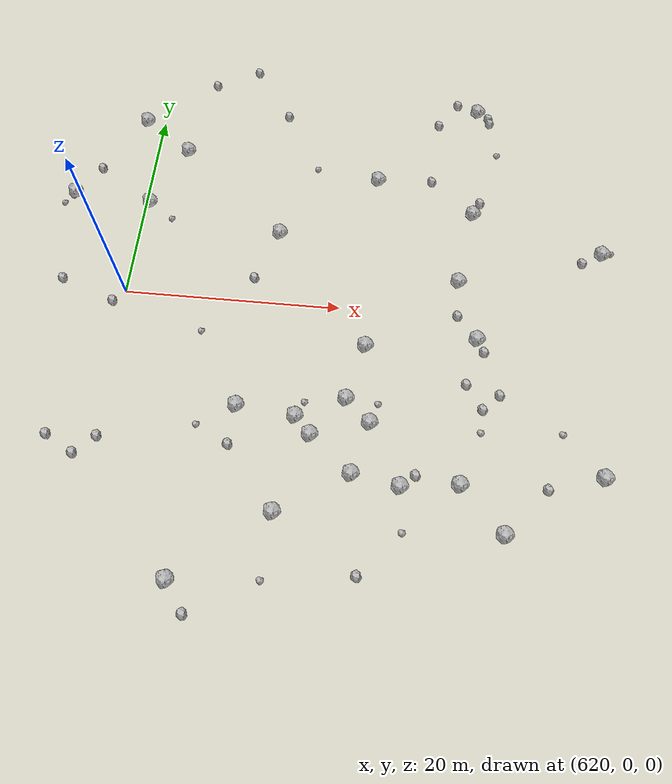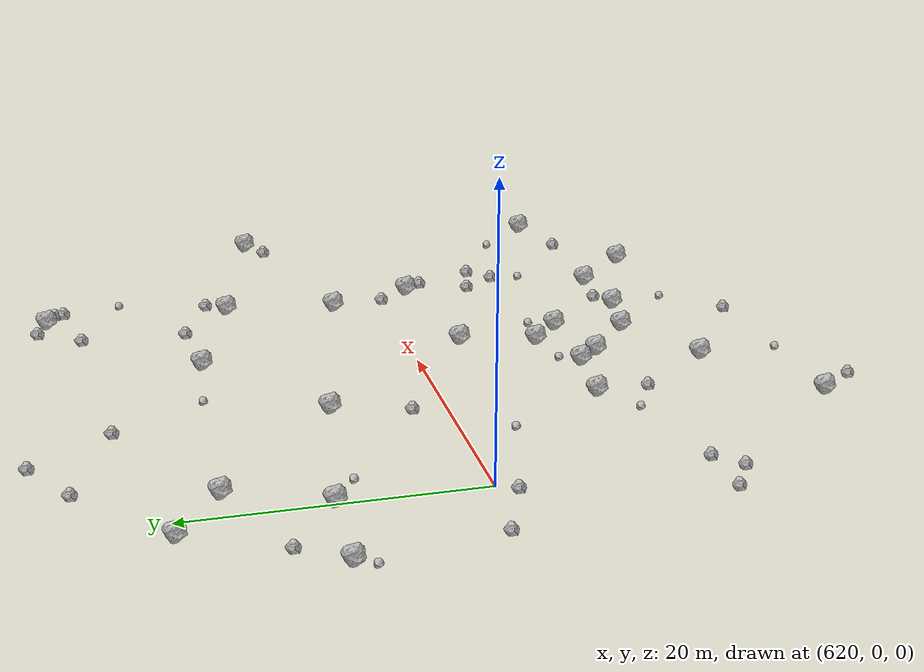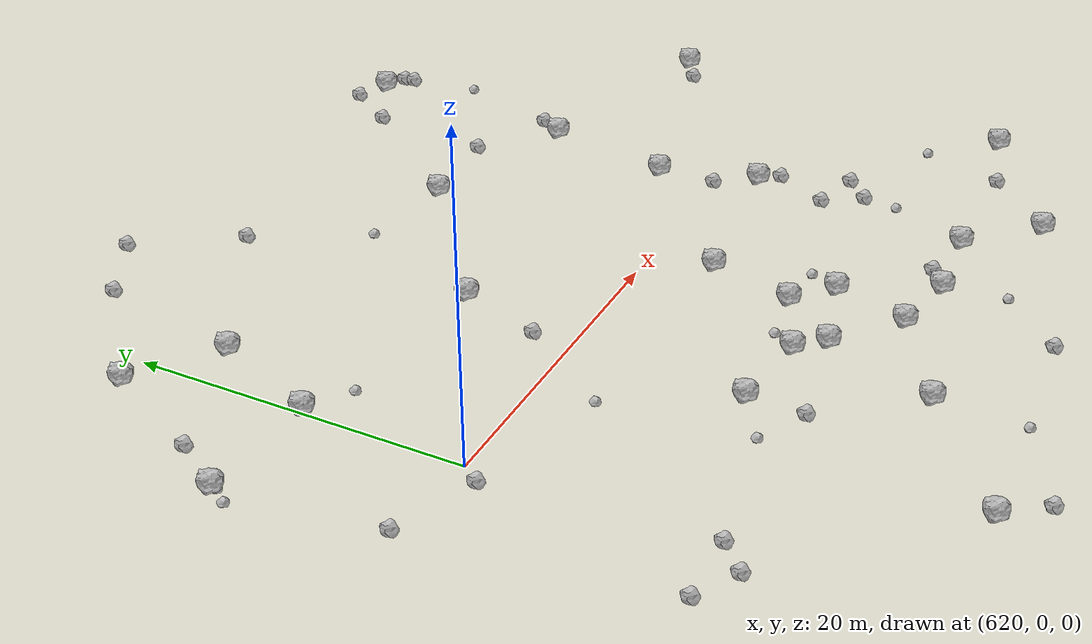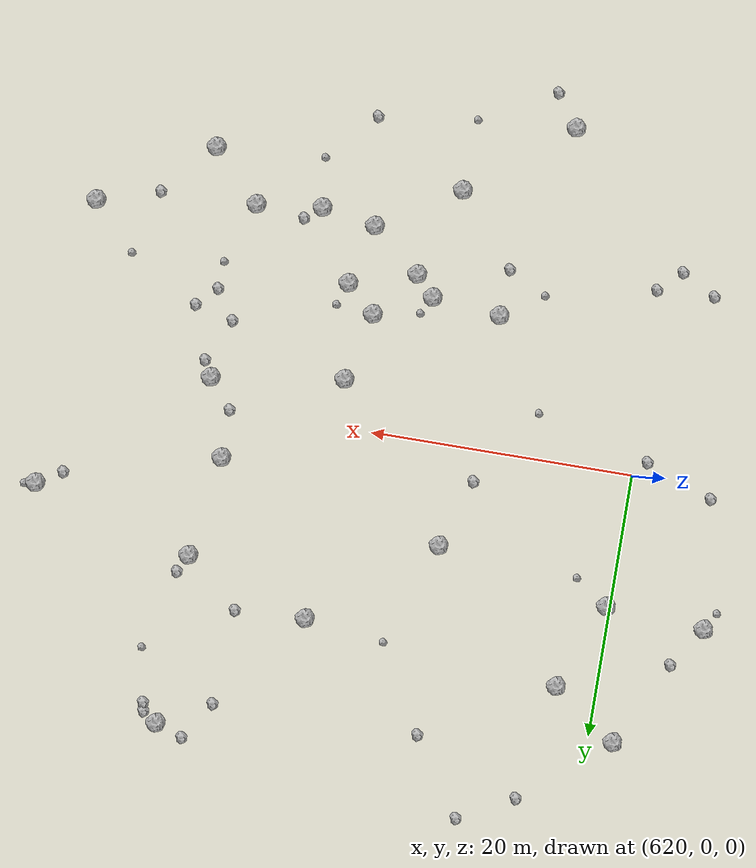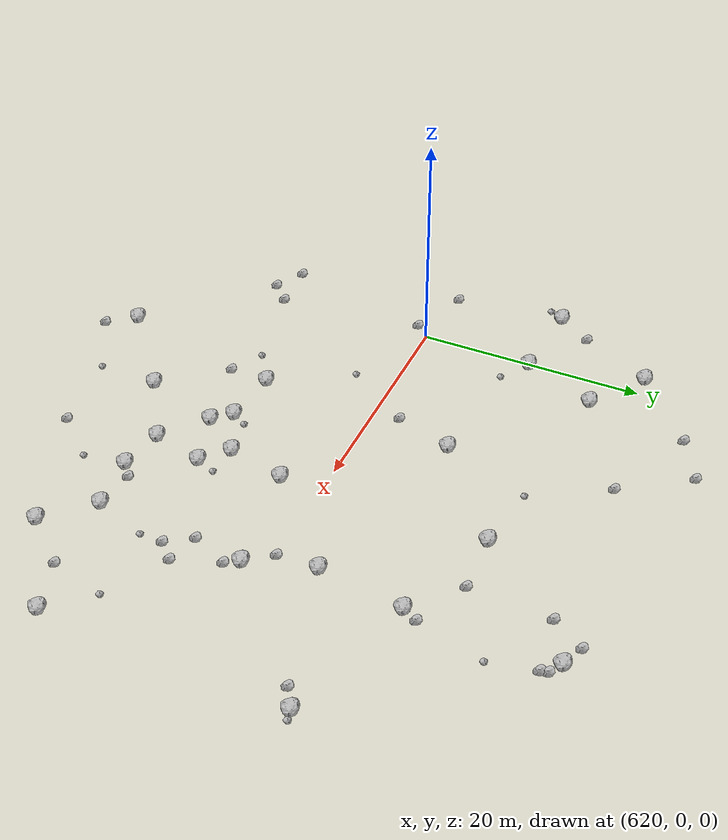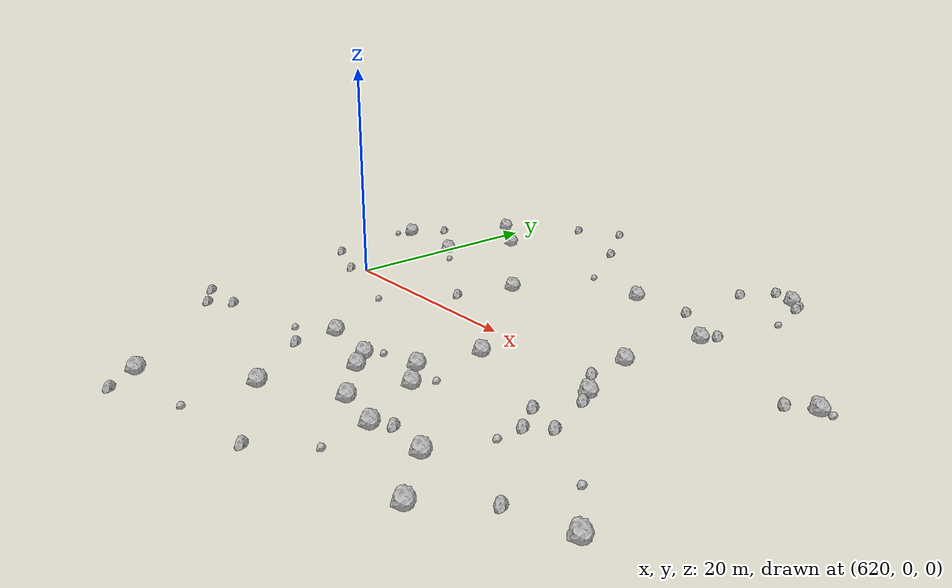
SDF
<sdf version="1.6">
 <world name="default">
  <include><uri>model://sun</uri></include>
  <model name="rock1_16_3">
   <include><uri>model://rock1</uri><pose>655.0976000307943 -19.44886054993017 0.5 0 0 0</pose></include>
  </model>
  <model name="rock1_16_4">
   <include><uri>model://rock1</uri><pose>633.6144603260788 7.549737119416193 0.5 0 0 0</pose></include>
  </model>
  <model name="rock1_16_5">
   <include><uri>model://rock1</uri><pose>664.4831558073475 7.842409477923987 0.5 0 0 0</pose></include>
  </model>
  <model name="rock1_16_6">
   <include><uri>model://rock1</uri><pose>620.3777467817897 10.006666674856028 0.5 0 0 0</pose></include>
  </model>
  <model name="rock1_16_7">
   <include><uri>model://rock1</uri><pose>642.6964645648422 -3.6941103582711996 0.5 0 0 0</pose></include>
  </model>
  <model name="rock1_16_8">
   <include><uri>model://rock1</uri><pose>642.6962534701021 14.633459083011736 0.5 0 0 0</pose></include>
  </model>
  <model name="rock1_16_9">
   <include><uri>model://rock1</uri><pose>638.5587019084992 -12.427067737032573 0.5 0 0 0</pose></include>
  </model>
  <model name="rock1_16_10">
   <include><uri>model://rock1</uri><pose>636.1941834165704 -19.257787688978702 0.5 0 0 0</pose></include>
  </model>
  <model name="rock1_16_11">
   <include><uri>model://rock1</uri><pose>641.3837069186455 -8.906708417195084 0.5 0 0 0</pose></include>
  </model>
  <model name="rock1_16_12">
   <include><uri>model://rock1</uri><pose>652.7027863062294 -2.191293931941125 0.5 0 0 0</pose></include>
  </model>
  <model name="rock1_16_13">
   <include><uri>model://rock1</uri><pose>643.5890707697033 -10.920410764844789 0.5 0 0 0</pose></include>
  </model>
  <model name="rock1_16_14">
   <include><uri>model://rock1</uri><pose>623.1188545006555 16.591481288633233 0.5 0 0 0</pose></include>
  </model>
  <model name="rock1_16_15">
   <include><uri>model://rock1</uri><pose>612.8267801538619 10.53603813397062 0.5 0 0 0</pose></include>
  </model>
  <model name="rock1_16_16">
   <include><uri>model://rock1</uri><pose>618.2188583480821 20.08228391128158 0.5 0 0 0</pose></include>
  </model>
  <model name="rock1_16_17">
   <include><uri>model://rock1</uri><pose>637.1273941661648 -10.887713473110704 0.5 0 0 0</pose></include>
  </model>
  <model name="rock1_16_18">
   <include><uri>model://rock1</uri><pose>631.9157229703769 -10.363801736614949 0.5 0 0 0</pose></include>
  </model>
  <model name="rock1_16_19">
   <include><uri>model://rock1</uri><pose>663.4305693868879 -14.02897376408476 0.5 0 0 0</pose></include>
  </model>
  <model name="rock1_16_20">
   <include><uri>model://rock1</uri><pose>651.4191656885581 -15.660564822269896 0.5 0 0 0</pose></include>
  </model>
  <model name="rock1_16_21">
   <include><uri>model://rock1</uri><pose>650.9171117458061 3.6649695328531067 0.5 0 0 0</pose></include>
  </model>
  <model name="rock1_16_22">
   <include><uri>model://rock1</uri><pose>628.4958996179672 -25.29790084128324 0.5 0 0 0</pose></include>
  </model>
  <model name="rock1_16_23">
   <include><uri>model://rock1</uri><pose>646.4538635795553 -16.230936913968552 0.5 0 0 0</pose></include>
  </model>
  <model name="rock1_16_24">
   <include><uri>model://rock1</uri><pose>652.5360567877092 24.279716442869308 0.5 0 0 0</pose></include>
  </model>
  <model name="rock1_16_25">
   <include><uri>model://rock1</uri><pose>642.3188825925346 -15.514560381470364 0.5 0 0 0</pose></include>
  </model>
  <model name="rock1_16_26">
   <include><uri>model://rock1</uri><pose>652.1706416617153 11.356645159787867 0.5 0 0 0</pose></include>
  </model>
  <model name="rock2_16_0">
   <include><uri>model://rock2</uri><pose>631.6737248149778 -13.886657383505593 0.3 0 0 0</pose></include>
  </model>
  <model name="rock2_16_1">
   <include><uri>model://rock2</uri><pose>620.4280363122663 -14.174732768315204 0.3 0 0 0</pose></include>
  </model>
  <model name="rock2_16_2">
   <include><uri>model://rock2</uri><pose>653.7336920877468 22.968703871930835 0.3 0 0 0</pose></include>
  </model>
  <model name="rock2_16_3">
   <include><uri>model://rock2</uri><pose>614.8147746270735 13.663665576452622 0.3 0 0 0</pose></include>
  </model>
  <model name="rock2_16_4">
   <include><uri>model://rock2</uri><pose>619.0074881193818 -1.1836697593865324 0.3 0 0 0</pose></include>
  </model>
  <model name="rock2_16_5">
   <include><uri>model://rock2</uri><pose>643.3959002808506 -23.707501573758353 0.3 0 0 0</pose></include>
  </model>
  <model name="rock2_16_6">
   <include><uri>model://rock2</uri><pose>613.8461796993346 0.7733121115502861 0.3 0 0 0</pose></include>
  </model>
  <model name="rock2_16_7">
   <include><uri>model://rock2</uri><pose>650.4239938557703 25.119443789268928 0.3 0 0 0</pose></include>
  </model>
  <model name="rock2_16_8">
   <include><uri>model://rock2</uri><pose>653.2383917383186 -8.872499193331713 0.3 0 0 0</pose></include>
  </model>
  <model name="rock2_16_9">
   <include><uri>model://rock2</uri><pose>650.8853731110194 0.06015891637245474 0.3 0 0 0</pose></include>
  </model>
  <model name="rock2_16_10">
   <include><uri>model://rock2</uri><pose>616.0595321654143 -14.384036901906592 0.3 0 0 0</pose></include>
  </model>
  <model name="rock2_16_11">
   <include><uri>model://rock2</uri><pose>651.7830770035598 -6.646752737656641 0.3 0 0 0</pose></include>
  </model>
  <model name="rock2_16_12">
   <include><uri>model://rock2</uri><pose>648.5156720499962 22.22701461862013 0.3 0 0 0</pose></include>
  </model>
  <model name="rock2_16_13">
   <include><uri>model://rock2</uri><pose>631.7921937285591 2.3977913517873333 0.3 0 0 0</pose></include>
  </model>
  <model name="rock2_16_14">
   <include><uri>model://rock2</uri><pose>647.691148080352 -15.194564600451091 0.3 0 0 0</pose></include>
  </model>
  <model name="rock2_16_15">
   <include><uri>model://rock2</uri><pose>632.843365170839 22.011260540293783 0.3 0 0 0</pose></include>
  </model>
  <model name="rock2_16_16">
   <include><uri>model://rock2</uri><pose>652.8282366838457 12.772085323771492 0.3 0 0 0</pose></include>
  </model>
  <model name="rock2_16_17">
   <include><uri>model://rock2</uri><pose>653.3296908291275 -3.3808986139807793 0.3 0 0 0</pose></include>
  </model>
  <model name="rock2_16_18">
   <include><uri>model://rock2</uri><pose>624.7073926209318 25.541594130119947 0.3 0 0 0</pose></include>
  </model>
  <model name="rock2_16_19">
   <include><uri>model://rock2</uri><pose>630.2069235289885 -27.705127709381635 0.3 0 0 0</pose></include>
  </model>
  <model name="rock2_16_20">
   <include><uri>model://rock2</uri><pose>618.6834743320958 -15.820118276501923 0.3 0 0 0</pose></include>
  </model>
  <model name="rock2_16_21">
   <include><uri>model://rock2</uri><pose>654.7183270327383 -7.406164193904797 0.3 0 0 0</pose></include>
  </model>
  <model name="rock2_16_22">
   <include><uri>model://rock2</uri><pose>653.5991401299416 23.598353305711022 0.3 0 0 0</pose></include>
  </model>
  <model name="rock2_16_23">
   <include><uri>model://rock2</uri><pose>658.6998021243081 -15.424150765312447 0.3 0 0 0</pose></include>
  </model>
  <model name="rock2_16_24">
   <include><uri>model://rock2</uri><pose>662.5477364809575 6.743303799663025 0.3 0 0 0</pose></include>
  </model>
  <model name="rock2_16_25">
   <include><uri>model://rock2</uri><pose>628.9414490810568 27.767279632246073 0.3 0 0 0</pose></include>
  </model>
  <model name="rock2_16_26">
   <include><uri>model://rock2</uri><pose>648.0146179446275 14.958762928355654 0.3 0 0 0</pose></include>
  </model>
  <model name="rock3_16_0">
   <include><uri>model://rock3</uri><pose>636.5189487881943 15.481033415384246 0.2 0 0 0</pose></include>
  </model>
  <model name="rock3_16_1">
   <include><uri>model://rock3</uri><pose>637.7942606890989 -9.55634479573844 0.2 0 0 0</pose></include>
  </model>
  <model name="rock3_16_2">
   <include><uri>model://rock3</uri><pose>627.7030210136057 -3.5480187755583508 0.2 0 0 0</pose></include>
  </model>
  <model name="rock3_16_3">
   <include><uri>model://rock3</uri><pose>654.4978558025972 18.832491627992162 0.2 0 0 0</pose></include>
  </model>
  <model name="rock3_16_4">
   <include><uri>model://rock3</uri><pose>644.1817299296833 -9.190241653821673 0.2 0 0 0</pose></include>
  </model>
  <model name="rock3_16_5">
   <include><uri>model://rock3</uri><pose>628.6859272660321 -12.406136578707038 0.2 0 0 0</pose></include>
  </model>
  <model name="rock3_16_6">
   <include><uri>model://rock3</uri><pose>611.9391861883348 9.218471628958298 0.2 0 0 0</pose></include>
  </model>
  <model name="rock3_16_7">
   <include><uri>model://rock3</uri><pose>635.8787522578963 -24.7301646773537 0.2 0 0 0</pose></include>
  </model>
  <model name="rock3_16_8">
   <include><uri>model://rock3</uri><pose>646.806077800164 -20.03922117474302 0.2 0 0 0</pose></include>
  </model>
  <model name="rock3_16_9">
   <include><uri>model://rock3</uri><pose>665.3168377899527 8.029808039247477 0.2 0 0 0</pose></include>
  </model>
  <model name="rock3_16_10">
   <include><uri>model://rock3</uri><pose>653.1008951465521 -11.002477806783286 0.2 0 0 0</pose></include>
  </model>
  <model name="rock3_16_11">
   <include><uri>model://rock3</uri><pose>660.1054534916171 -10.533721084626933 0.2 0 0 0</pose></include>
  </model>
  <model name="rock3_16_12">
   <include><uri>model://rock3</uri><pose>612.686467199126 10.144390879021465 0.2 0 0 0</pose></include>
  </model>
  <model name="rock3_16_13">
   <include><uri>model://rock3</uri><pose>622.8261184385633 8.271927322844576 0.2 0 0 0</pose></include>
  </model>
 </world>
</sdf>
